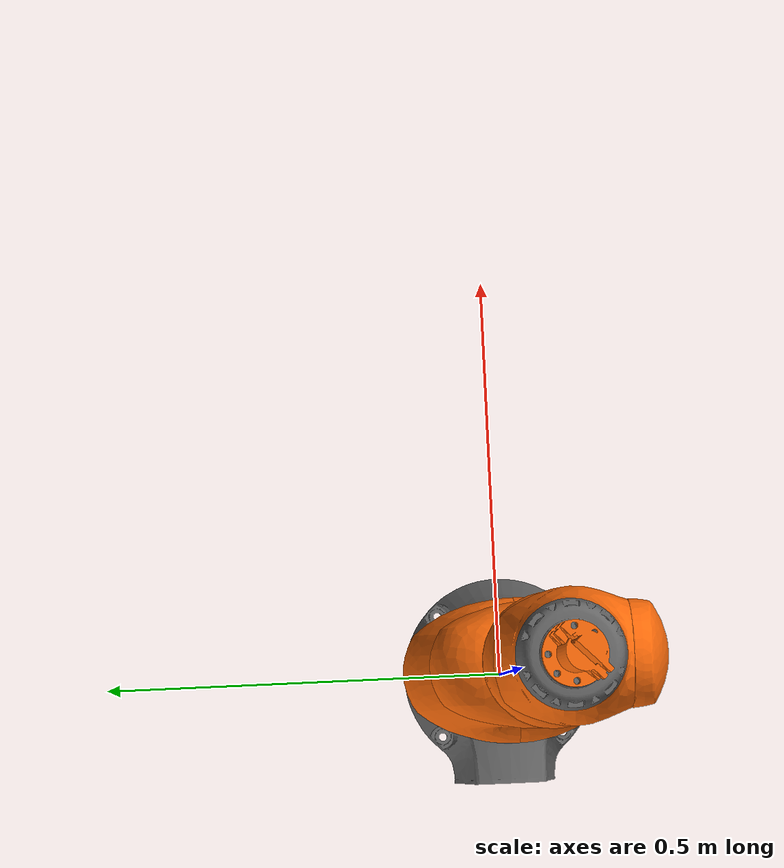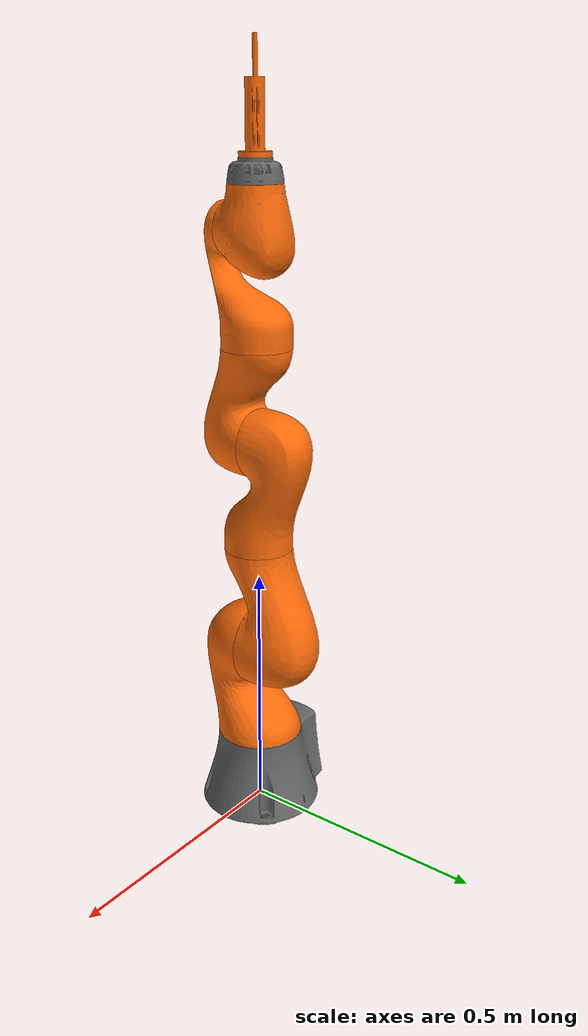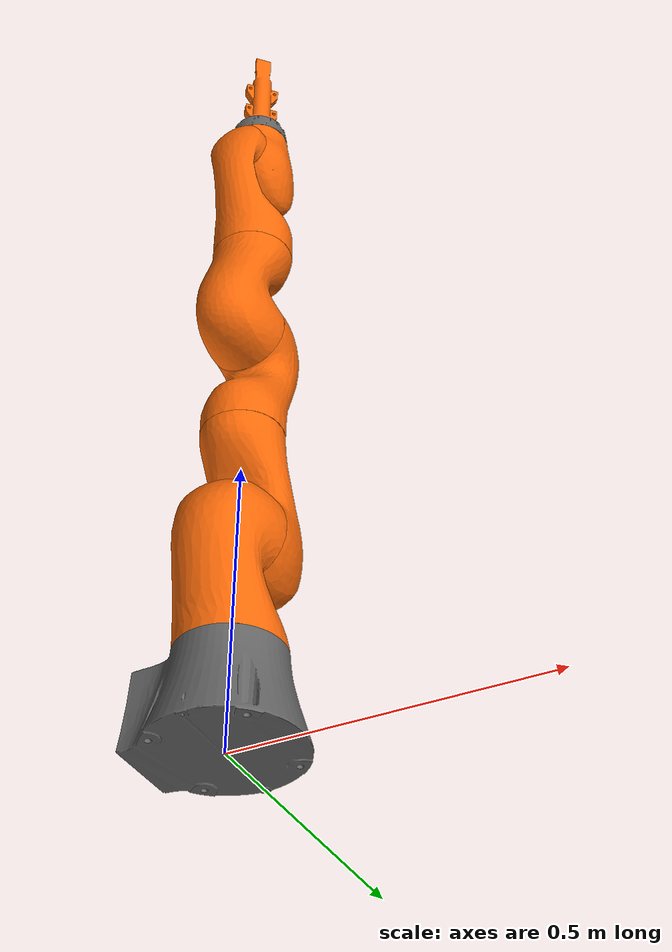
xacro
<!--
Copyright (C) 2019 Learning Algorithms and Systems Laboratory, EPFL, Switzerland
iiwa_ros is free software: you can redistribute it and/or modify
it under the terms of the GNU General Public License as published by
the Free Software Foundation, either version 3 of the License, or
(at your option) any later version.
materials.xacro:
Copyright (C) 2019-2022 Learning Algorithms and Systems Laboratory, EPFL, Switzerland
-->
<?xml version="1.0"?>
<robot name="iiwa16" xmlns:xacro="http://www.ros.org/wiki/xacro">
  <!-- Import Rviz colors -->
  <xacro:include filename="$(find iiwa_description)/urdf/materials.xacro" />
  <!--Import the lbr iiwa macro -->
  <xacro:include filename="$(find iiwa_description)/urdf/iiwa16.xacro"/>

  <xacro:arg name="hardware_interface" default="PositionJointInterface"/>
  <xacro:arg name="robot_name" default="iiwa"/>
  <xacro:arg name="origin_xyz" default="0 0 0"/>
  <xacro:arg name="origin_rpy" default="0 0 0"/>
  <xacro:arg name="simple_collision" default="false"/>

  <!-- collision shapes -->
  <xacro:if value="$(arg simple_collision)">
    <xacro:arg name="collision_postfix" default="_s"/>
  </xacro:if>
  <xacro:unless value="$(arg simple_collision)">
    <xacro:arg name="collision_postfix" default=""/>
  </xacro:unless>

  <!-- Fix to world just for testing -->
  <link name="world"/>

  <!--iiwa-->
  <xacro:iiwa14 hardware_interface="$(arg hardware_interface)" robot_name="$(arg robot_name)" parent="world" collision_postfix="$(arg collision_postfix)">
    <origin xyz="$(arg origin_xyz)" rpy="$(arg origin_rpy)" />
  </xacro:iiwa14>

</robot>

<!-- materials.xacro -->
<robot>

  <material name="Black">
    <color rgba="0.0 0.0 0.0 1.0"/>
  </material>

  <material name="Blue">
    <color rgba="0.0 0.0 0.8 1.0"/>
  </material>

  <material name="Green">
    <color rgba="0.0 0.8 0.0 1.0"/>
  </material>

  <material name="Grey">
    <color rgba="0.4 0.4 0.4 1.0"/>
  </material>

  <material name="Orange">
    <color rgba="${255/255} ${108/255} ${10/255} 1.0"/>
  </material>

  <material name="Brown">
    <color rgba="${222/255} ${207/255} ${195/255} 1.0"/>
  </material>

  <material name="Red">
    <color rgba="0.8 0.0 0.0 1.0"/>
  </material>

  <material name="White">
    <color rgba="1.0 1.0 1.0 1.0"/>
  </material>

</robot>

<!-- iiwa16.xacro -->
<robot xmlns:xacro="http://www.ros.org/wiki/xacro">

  <!-- Import all Gazebo-customization elements, including Gazebo colors -->
  <xacro:include filename="$(find iiwa_description)/urdf/iiwa.gazebo.xacro" />
  <!-- Import Transmissions -->
  <xacro:include filename="$(find iiwa_description)/urdf/iiwa.transmission.xacro" />
  <!-- Include Utilities -->
  <xacro:include filename="$(find iiwa_description)/urdf/utilities.xacro" />

  <!-- some parameters -->
  <xacro:property name="safety" value="true"/>

  <!-- some constants -->
  <xacro:property name="safety_controller_k_pos" value="100"/>
  <xacro:property name="safety_controller_k_vel" value="10"/>
  <xacro:property name="safety_percentage" value="0.95"/>
  <xacro:property name="joint_damping" value="0.5"/>
  <!-- joint limits -->
  <xacro:property name="joint_limit_1" value="170"/>
  <xacro:property name="joint_limit_2" value="120"/>
  <xacro:property name="joint_limit_3" value="170"/>
  <xacro:property name="joint_limit_4" value="120"/>
  <xacro:property name="joint_limit_5" value="170"/>
  <xacro:property name="joint_limit_6" value="120"/>
  <xacro:property name="joint_limit_7" value="175"/>
  <!-- max torques per joint -->
  <xacro:property name="max_effort_1" value="320"/>
  <xacro:property name="max_effort_2" value="320"/>
  <xacro:property name="max_effort_3" value="176"/>
  <xacro:property name="max_effort_4" value="176"/>
  <xacro:property name="max_effort_5" value="110"/>
  <xacro:property name="max_effort_6" value="40"/>
  <xacro:property name="max_effort_7" value="40"/>
  <!-- max velocities per joint -->
  <xacro:property name="max_velocity_1" value="${85 * PI / 180.}"/>
  <xacro:property name="max_velocity_2" value="${85 * PI / 180.}"/>
  <xacro:property name="max_velocity_3" value="${100 * PI / 180.}"/>
  <xacro:property name="max_velocity_4" value="${75 * PI/ 180.}"/>
  <xacro:property name="max_velocity_5" value="${130 * PI / 180.}"/>
  <xacro:property name="max_velocity_6" value="${135 * PI / 180.}"/>
  <xacro:property name="max_velocity_7" value="${135 * PI / 180.}"/>

  <xacro:macro name="iiwa14" params="parent hardware_interface robot_name collision_postfix *origin">

    <!--joint between {parent} and link_0-->
    <joint name="${parent}_${robot_name}_joint" type="fixed">
      <xacro:insert_block name="origin"/>
      <parent link="${parent}"/>
      <child link="${robot_name}_link_0"/>
    </joint>

    <link name="${robot_name}_link_0">
      <inertial>
        <origin xyz="-0.1 0 0.07" rpy="0 0 0"/>
        <mass value="5"/>
        <inertia ixx="0.05"  ixy="0"  ixz="0" iyy="0.06" iyz="0" izz="0.03" />
      </inertial>

      <visual>
        <origin xyz="0 0 0" rpy="0 0 0"/>
        <geometry>
          <mesh filename="package://iiwa_description/meshes/iiwa14/visual/link_0.stl"/>
        </geometry>
        <material name="Grey"/>
      </visual>

      <collision>
        <origin xyz="0 0 0" rpy="0 0 0"/>
        <geometry>
          <mesh filename="package://iiwa_description/meshes/iiwa14/collision/link_0${collision_postfix}.stl"/>
        </geometry>
        <material name="Grey"/>
      </collision>

      <self_collision_checking>
        <origin xyz="0 0 0" rpy="0 0 0"/>
        <geometry>
          <capsule radius="0.15" length="0.25"/>
        </geometry>
      </self_collision_checking>

    </link>

    <!-- joint between link_0 and link_1 -->
    <joint name="${robot_name}_joint_1" type="revolute">
      <parent link="${robot_name}_link_0"/>
      <child link="${robot_name}_link_1"/>
      <origin xyz="0 0 0.1575" rpy="0 0 0"/>
      <axis xyz="0 0 1"/>
      <limit lower="${-joint_limit_1 * PI / 180}" upper="${joint_limit_1 * PI / 180}"
             effort="${max_effort_1}" velocity="${max_velocity_1}" />
      <xacro:safe_controller safety="${safety}"
                               lower="${-safety_percentage * joint_limit_1 * PI / 180}"
                               upper="${safety_percentage * joint_limit_1 * PI / 180}"
                               k_p="${safety_controller_k_pos}"
                               k_v="${safety_controller_k_vel}"/>
      <dynamics damping="${joint_damping}"/>
    </joint>

    <link name="${robot_name}_link_1">
      <inertial>
        <origin xyz="0 -0.03 0.12" rpy="0 0 0"/>
        <mass value="4"/>
        <inertia ixx="0.1"  ixy="0"  ixz="0" iyy="0.09" iyz="0" izz="0.02" />
      </inertial>

      <visual>
        <origin xyz="0 0 0" rpy="0 0 0"/>
        <geometry>
          <mesh filename="package://iiwa_description/meshes/iiwa14/visual/link_1.stl"/>
        </geometry>
        <material name="Orange"/>
      </visual>

      <collision>
        <origin xyz="0 0 0" rpy="0 0 0"/>
        <geometry>
          <mesh filename="package://iiwa_description/meshes/iiwa14/collision/link_1${collision_postfix}.stl"/>
        </geometry>
        <material name="Orange"/>
      </collision>
    </link>

    <!-- joint between link_1 and link_2 -->
    <joint name="${robot_name}_joint_2" type="revolute">
      <parent link="${robot_name}_link_1"/>
      <child link="${robot_name}_link_2"/>
      <origin xyz="0 0 0.2025" rpy="${PI / 2}   0 ${PI}"/>
      <axis xyz="0 0 1"/>
      <limit lower="${-joint_limit_2 * PI / 180}" upper="${joint_limit_2 * PI / 180}"
             effort="${max_effort_2}" velocity="${max_velocity_2}" />
      <xacro:safe_controller safety="${safety}"
                               lower="${-safety_percentage * joint_limit_2 * PI / 180}"
                               upper="${safety_percentage * joint_limit_2 * PI / 180}"
                               k_p="${safety_controller_k_pos}"
                               k_v="${safety_controller_k_vel}"/>
      <dynamics damping="${joint_damping}"/>
    </joint>

    <link name="${robot_name}_link_2">
      <inertial>
        <origin xyz="0.0003 0.059 0.042" rpy="0 0 0"/>
        <mass value="4"/>
        <inertia ixx="0.05"  ixy="0"  ixz="0" iyy="0.018" iyz="0" izz="0.044" />
      </inertial>

      <visual>
        <origin xyz="0 0 0" rpy="0 0 0"/>
        <geometry>
          <mesh filename="package://iiwa_description/meshes/iiwa14/visual/link_2.stl"/>
        </geometry>
        <material name="Orange"/>
      </visual>

      <collision>
        <origin xyz="0 0 0" rpy="0 0 0"/>
        <geometry>
          <mesh filename="package://iiwa_description/meshes/iiwa14/collision/link_2${collision_postfix}.stl"/>
        </geometry>
        <material name="Orange"/>
      </collision>
    </link>

    <!-- joint between link_2 and link_3 -->
    <joint name="${robot_name}_joint_3" type="revolute">
      <parent link="${robot_name}_link_2"/>
      <child link="${robot_name}_link_3"/>
      <origin xyz="0 0.2045 0" rpy="${PI / 2} 0 ${PI}"/>
      <axis xyz="0 0 1"/>
      <limit lower="${-joint_limit_3 * PI / 180}" upper="${joint_limit_3 * PI / 180}"
             effort="${max_effort_3}" velocity="${max_velocity_3}" />
      <xacro:safe_controller safety="${safety}"
                               lower="${-safety_percentage * joint_limit_3 * PI / 180}"
                               upper="${safety_percentage * joint_limit_3 * PI / 180}"
                               k_p="${safety_controller_k_pos}"
                               k_v="${safety_controller_k_vel}"/>
      <dynamics damping="${joint_damping}"/>
    </joint>

    <link name="${robot_name}_link_3">
      <inertial>
        <origin xyz="0 0.03 0.13" rpy="0 0 0"/>
        <mass value="3"/>
        <inertia ixx="0.08"  ixy="0"  ixz="0" iyy="0.075" iyz="0" izz="0.01" />
      </inertial>

      <visual>
        <origin xyz="0 0 0" rpy="0 0 0"/>
        <geometry>
          <mesh filename="package://iiwa_description/meshes/iiwa14/visual/link_3.stl"/>
        </geometry>
        <material name="Orange"/>
      </visual>

      <collision>
        <origin xyz="0 0 0" rpy="0 0 0"/>
        <geometry>
          <mesh filename="package://iiwa_description/meshes/iiwa14/collision/link_3${collision_postfix}.stl"/>
        </geometry>
        <material name="Orange"/>
      </collision>
    </link>

    <!-- joint between link_3 and link_4 -->
    <joint name="${robot_name}_joint_4" type="revolute">
      <parent link="${robot_name}_link_3"/>
      <child link="${robot_name}_link_4"/>
      <origin xyz="0 0 0.2155" rpy="${PI / 2} 0 0"/>
      <axis xyz="0 0 1"/>
      <limit lower="${-joint_limit_4 * PI / 180}" upper="${joint_limit_4 * PI / 180}"
             effort="${max_effort_4}" velocity="${max_velocity_4}" />
      <xacro:safe_controller safety="${safety}"
                               lower="${-safety_percentage * joint_limit_4 * PI / 180}"
                               upper="${safety_percentage * joint_limit_4 * PI / 180}"
                               k_p="${safety_controller_k_pos}"
                               k_v="${safety_controller_k_vel}"/>
      <dynamics damping="${joint_damping}"/>
    </joint>

    <link name="${robot_name}_link_4">
      <inertial>
        <origin xyz="0 0.067 0.034" rpy="0 0 0"/>
        <mass value="2.7"/>
        <inertia ixx="0.03"  ixy="0"  ixz="0" iyy="0.01" iyz="0" izz="0.029" />
      </inertial>

      <visual>
        <origin xyz="0 0 0" rpy="0 0 0"/>
        <geometry>
          <mesh filename="package://iiwa_description/meshes/iiwa14/visual/link_4.stl"/>
        </geometry>
        <material name="Orange"/>
      </visual>

      <collision>
        <origin xyz="0 0 0" rpy="0 0 0"/>
        <geometry>
          <mesh filename="package://iiwa_description/meshes/iiwa14/collision/link_4${collision_postfix}.stl"/>
        </geometry>
        <material name="Orange"/>
      </collision>
    </link>

    <!-- joint between link_4 and link_5 -->
    <joint name="${robot_name}_joint_5" type="revolute">
      <parent link="${robot_name}_link_4"/>
      <child link="${robot_name}_link_5"/>
      <origin xyz="0 0.1845 0" rpy="${-PI / 2} ${PI} 0"/>
      <axis xyz="0 0 1"/>
      <limit lower="${-joint_limit_5 * PI / 180}" upper="${joint_limit_5 * PI / 180}"
             effort="${max_effort_5}" velocity="${max_velocity_5}" />
      <xacro:safe_controller safety="${safety}"
                               lower="${-safety_percentage * joint_limit_5 * PI / 180}"
                               upper="${safety_percentage * joint_limit_5 * PI / 180}"
                               k_p="${safety_controller_k_pos}"
                               k_v="${safety_controller_k_vel}"/>
      <dynamics damping="${joint_damping}"/>
    </joint>

    <link name="${robot_name}_link_5">
      <inertial>
        <origin xyz="0.0001 0.021 0.076" rpy="0 0 0"/>
        <mass value="1.7"/>
        <inertia ixx="0.02"  ixy="0"  ixz="0" iyy="0.018" iyz="0" izz="0.005" />
      </inertial>

      <visual>
        <origin xyz="0 0 0" rpy="0 0 0"/>
        <geometry>
          <mesh filename="package://iiwa_description/meshes/iiwa14/visual/link_5.stl"/>
        </geometry>
        <material name="Orange"/>
      </visual>

      <collision>
        <origin xyz="0 0 0" rpy="0 0 0"/>
        <geometry>
          <mesh filename="package://iiwa_description/meshes/iiwa14/collision/link_5${collision_postfix}.stl"/>
        </geometry>
        <material name="Orange"/>
      </collision>
    </link>

    <!-- joint between link_5 and link_6 -->
    <joint name="${robot_name}_joint_6" type="revolute">
      <parent link="${robot_name}_link_5"/>
      <child link="${robot_name}_link_6"/>
      <origin xyz="0 0 0.2155" rpy="${PI / 2} 0 0"/>
      <axis xyz="0 0 1"/>
      <limit lower="${-joint_limit_6 * PI / 180}" upper="${joint_limit_6 * PI / 180}"
             effort="${max_effort_6}" velocity="${max_velocity_6}" />
      <xacro:safe_controller safety="${safety}"
                               lower="${-safety_percentage * joint_limit_6 * PI / 180}"
                               upper="${safety_percentage * joint_limit_6 * PI / 180}"
                               k_p="${safety_controller_k_pos}"
                               k_v="${safety_controller_k_vel}"/>
      <dynamics damping="${joint_damping}"/>
    </joint>

    <link name="${robot_name}_link_6">
      <inertial>
        <origin xyz="0 0.0006 0.0004" rpy="0 0 0"/>
        <mass value="1.8"/>
        <inertia ixx="0.005"  ixy="0"  ixz="0" iyy="0.0036" iyz="0" izz="0.0047" />
      </inertial>

      <visual>
        <origin xyz="0 0 0" rpy="0 0 0"/>
        <geometry>
          <mesh filename="package://iiwa_description/meshes/iiwa14/visual/link_6.stl"/>
        </geometry>
        <material name="Orange"/>
      </visual>

      <collision>
        <origin xyz="0 0 0" rpy="0 0 0"/>
        <geometry>
          <mesh filename="package://iiwa_description/meshes/iiwa14/collision/link_6${collision_postfix}.stl"/>
        </geometry>
        <material name="Orange"/>
      </collision>
    </link>

    <!-- joint between link_6 and link_7 -->
    <joint name="${robot_name}_joint_7" type="revolute">
      <parent link="${robot_name}_link_6"/>
      <child link="${robot_name}_link_7"/>
      <origin xyz="0 0.081 0" rpy="${- PI / 2} ${PI} 0"/>
      <axis xyz="0 0 1"/>
      <limit lower="${-joint_limit_7 * PI / 180}" upper="${joint_limit_7 * PI / 180}"
             effort="${max_effort_7}" velocity="${max_velocity_7}" />
      <xacro:safe_controller safety="${safety}"
                               lower="${-safety_percentage * joint_limit_7 * PI / 180}"
                               upper="${safety_percentage * joint_limit_7 * PI / 180}"
                               k_p="${safety_controller_k_pos}"
                               k_v="${safety_controller_k_vel}"/>
      <dynamics damping="${joint_damping}"/>
    </joint>

    <link name="${robot_name}_link_7">
      <inertial>
        <origin xyz="0 0 0.02" rpy="0 0 0"/>
        <mass value="0.3"/>
        <inertia ixx="0.001"  ixy="0"  ixz="0" iyy="0.001" iyz="0" izz="0.001" />
      </inertial>

      <visual>
        <origin xyz="0 0 0" rpy="0 0 0"/>
        <geometry>
          <mesh filename="package://iiwa_description/meshes/iiwa14/visual/link_7.stl"/>
        </geometry>
        <material name="Grey"/>
      </visual>

      <collision>
        <origin xyz="0 0 0" rpy="0 0 0"/>
        <geometry>
          <mesh filename="package://iiwa_description/meshes/iiwa14/collision/link_7${collision_postfix}.stl"/>
        </geometry>
        <material name="Grey"/>
      </collision>
    </link>

	 <!-- joint between link_6 and End Effector -->
    <joint name="${robot_name}_joint_ee" type="fixed">
      <parent link="${robot_name}_link_7"/>
      <child link="${robot_name}_link_ee"/>
      <origin xyz="0 0 0.045" rpy="0 0 0"/>
    </joint>

    <link name="${robot_name}_link_ee">
      <inertial>
        <origin xyz="0 0 0" rpy="0 0 0"/>
        <mass value="1e-6"/>
        <inertia ixx="1"  ixy="0"  ixz="0" iyy="1" iyz="0" izz="1" />
      </inertial>

      <visual>
        <origin xyz="0 0 0" rpy="0 0 0"/>
        <geometry>
          <mesh filename="package://iiwa_description/meshes/iiwa14/visual/BrushScaled.stl"/>
        </geometry>
        <material name="Orange"/>
      </visual>

      <collision>
        <origin xyz="0 0 0" rpy="0 0 0"/>
        <geometry>
          <mesh filename="package://iiwa_description/meshes/iiwa14/collision/BrushScaled.stl"/>
        </geometry>
        <material name="Orange"/>
      </collision>

    </link>

    <!--Extensions -->
    <xacro:iiwa_gazebo robot_name="${robot_name}" />
    <xacro:iiwa_transmission hardware_interface="${hardware_interface}"/>

  </xacro:macro>

</robot>

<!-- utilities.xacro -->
<robot xmlns:xacro="http://www.ros.org/wiki/xacro">

  <xacro:property name="PI" value="3.1415926535897931"/>

  <!-- The following macros are adapted from the LWR 4 definitions of the RCPRG - https://github.com/RCPRG-ros-pkg/lwr_robot -->
  <!--Little helper macros to define the inertia matrix needed for links.-->
  <!--Cuboid-->
  <xacro:macro name="cuboid_inertia" params="width height length mass">
    <inertia ixx="${mass * (height * height + length * length) / 12)}"
             iyy="${mass * (width * width + length * length) / 12)}"
             izz="${mass * (width * width + height * height) / 12)}"
             ixy="0" iyz="0" ixz="0"/>
  </xacro:macro>

  <!--Cylinder: length is along the y-axis! -->
  <xacro:macro name="cylinder_inertia" params="radius length mass">
    <inertia ixx="${mass * (3 * radius * radius + length * length) / 12)}"
             iyy="${mass * radius* radius / 2)}"
             izz="${mass * (3 * radius * radius + length * length) / 12)}"
             ixy="0" iyz="0" ixz="0"/>
  </xacro:macro>

  <!-- Safety controller -->
  <xacro:macro name="safe_controller" params="safety lower upper k_p k_v">
    <xacro:if value="${safety}">
      <safety_controller soft_lower_limit="${lower}"
                         soft_upper_limit="${upper}"
                         k_position="${k_p}"
                         k_velocity="${k_v}"/>
    </xacro:if>
  </xacro:macro>

</robot>
